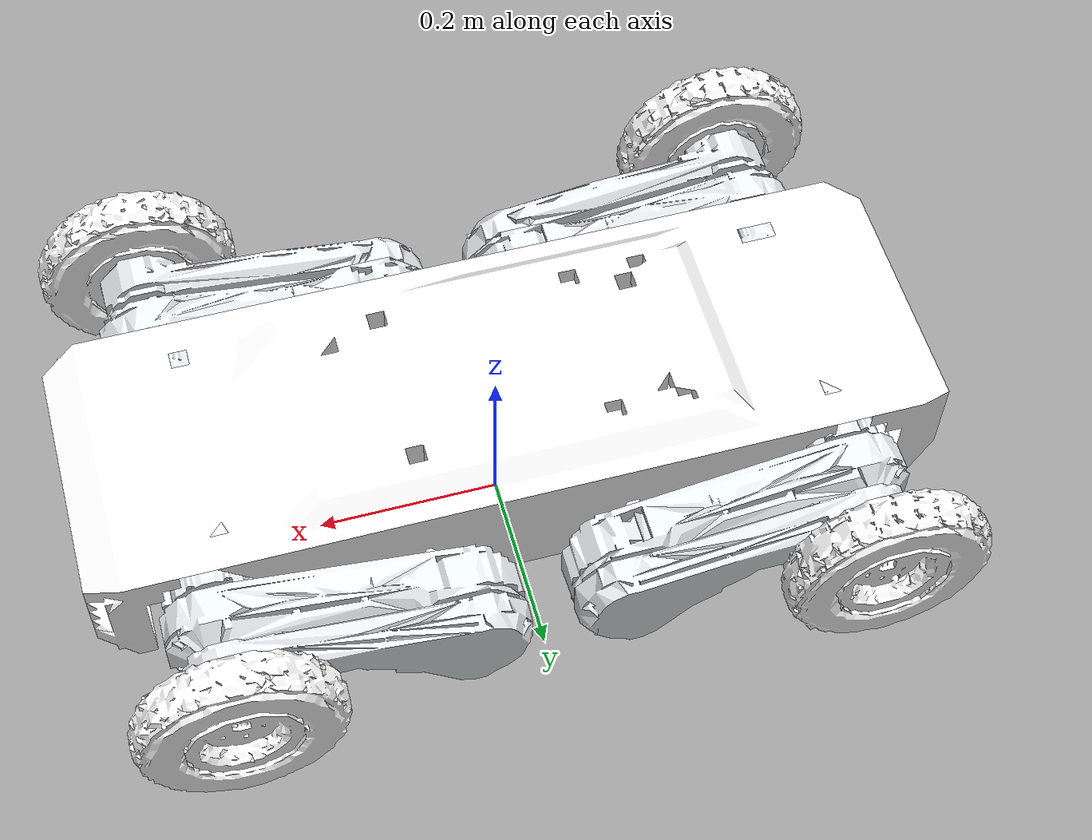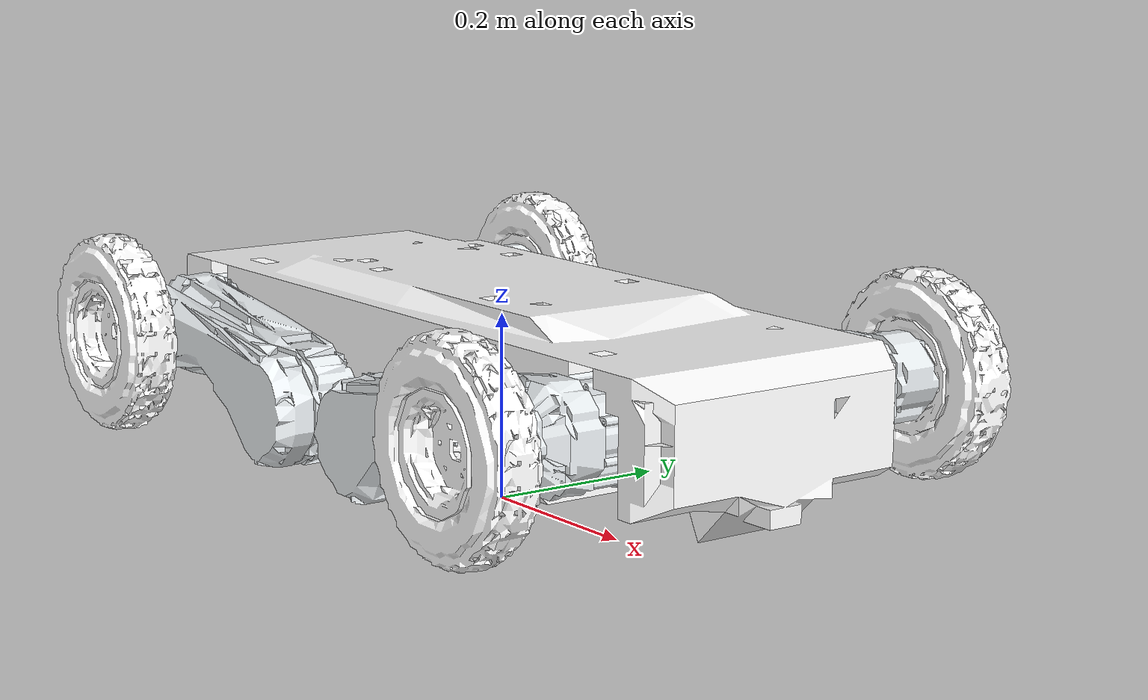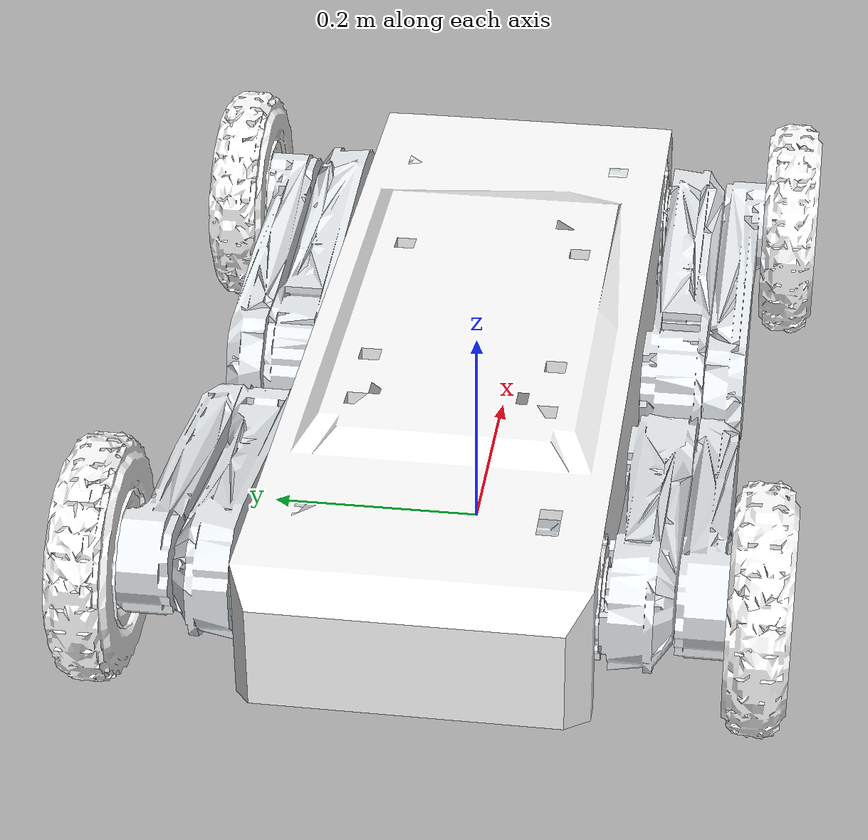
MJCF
<mujoco model="JXG">
  <compiler angle="radian" meshdir="meshes/" autolimits="true"/>
  <statistic meansize="0.216419" extent="1.00893" center="0.0188332 0.00134897 -0.0482028"/>
  <size njmax="500" nconmax="100"/>

  <option cone="elliptic" impratio="100"/>

  <default>
    <default class="JXG">
      <geom friction="0.4" margin="0.001" condim="1"/>
      <joint damping="0.1" armature="0.01" frictionloss="0.2"/>
      <motor/>
      <default class="visual">
        <geom type="mesh" contype="0" conaffinity="0" group="1"/>
      </default>
      <default class="collision">
        <geom group="3"/>
      </default>
    </default>
  </default>

  <asset>
    <mesh name="base_link" file="base_link.obj"/>
    <mesh name="FL_hip" file="FL_hip.obj"/>
    <mesh name="FL_thigh" file="FL_thigh.obj"/>
    <mesh name="FL_calf" file="FL_calf.obj"/>
    <mesh name="FL_foot" file="FL_foot.obj"/>
    <mesh name="FR_hip" file="FR_hip.obj"/>
    <mesh name="FR_thigh" file="FR_thigh.obj"/>
    <mesh name="FR_calf" file="FR_calf.obj"/>
    <mesh name="FR_foot" file="FR_foot.obj"/>
    <mesh name="RL_hip" file="RL_hip.obj"/>
    <mesh name="RL_thigh" file="RL_thigh.obj"/>
    <mesh name="RL_calf" file="RL_calf.obj"/>
    <mesh name="RL_foot" file="RL_foot.obj"/>
    <mesh name="RR_hip" file="RR_hip.obj"/>
    <mesh name="RR_thigh" file="RR_thigh.obj"/>
    <mesh name="RR_calf" file="RR_calf.obj"/>
    <mesh name="RR_foot" file="RR_foot.obj"/>
  </asset>

  <worldbody>
    <light name="spotlight" mode="targetbodycom" target="base_link" pos="0 -0.5 2" cutoff="0.785" directional="false" castshadow="true"/>

    <body name="base_link" pos="0 0 0.2" childclass="JXG">
      <inertial pos="0.0067692 0.0046913 -0.0546898" quat="-0.00094756 0.70675 -0.00189277 0.70746" mass="21.0359" diaginertia="0.729896 0.656605 0.175112"/>
      <joint name="floating_base_joint" type="free"/>
      <geom type="mesh" contype="0" conaffinity="0" group="1" density="0" rgba="1 1 1 1" mesh="base_link"/>
      <geom size="0.265 0.145 0.075" pos="0 0 -0.048" type="box" rgba="1 1 1 1" class="collision"/>
      <site name="imu" pos="0.0 0.0 0.0"/>
      <body name="FL_hip" pos="0.3315 0.075 -0.0432">
        <inertial pos="-0.0034775 0.0431532 3.81e-05" quat="-0.0707528 0.674056 0.215851 0.702888" mass="1.89709" diaginertia="0.00329156 0.00328559 0.00277945"/>
        <joint name="FL_hip_joint" pos="0 0 0" axis="1 0 0" range="-0.85 0.85"/>
        <geom type="mesh" contype="0" conaffinity="0" group="1" density="0" rgba="0.89804 0.91765 0.92941 1" mesh="FL_hip"/>
        <geom size="0.055 0.05" pos="0 0.085 0" quat="0.707105 0.707108 0 0" type="cylinder" rgba="0.89804 0.91765 0.92941 1" class="collision"/>
        <body name="FL_thigh" pos="0 0.1125 0">
          <inertial pos="-0.181442 -0.0025018 -0.0292968" quat="0.553599 0.45904 0.442952 0.535353" mass="1.78267" diaginertia="0.0204209 0.0190441 0.00248422"/>
          <joint name="FL_thigh_joint" pos="0 0 0" axis="0 1 0" range="-2.1 1.56"/>
          <geom type="mesh" contype="0" conaffinity="0" group="1" density="0" rgba="0.89804 0.91765 0.92941 1" mesh="FL_thigh"/>
          <geom size="0.12 0.025 0.045" pos="-0.185 0 0" type="box" rgba="0.89804 0.91765 0.92941 1" class="collision"/>
          <body name="FL_calf" pos="-0.2461 0.044 -0.044">
            <inertial pos="0.121056 0.0039521 0.0291696" quat="0.518928 0.441604 0.458857 0.57022" mass="0.835067" diaginertia="0.0109267 0.0104099 0.000899342"/>
            <joint name="FL_calf_joint" pos="0 0 0" axis="0 1 0" range="0.4 2.4"/>
            <geom type="mesh" contype="0" conaffinity="0" group="1" density="0" rgba="0.89804 0.91765 0.92941 1" mesh="FL_calf"/>
            <geom size="0.16 0.015 0.025" pos="0.12 0 0.04" quat="0.99875 0 -0.0499792 0" type="box" rgba="0.89804 0.91765 0.92941 1" class="collision"/>
            <body name="FL_foot" pos="0.24564 0 0.0465">
              <inertial pos="-1e-05 0.0519824 1.1e-06" quat="0.707107 0 0 0.707107" mass="0.548405" diaginertia="0.0033289 0.0018184 0.0018182"/>
              <joint name="FL_foot_joint" pos="0 0 0" axis="0 1 0" range="-9999999 9999999"/>
              <geom type="mesh" contype="0" conaffinity="0" group="1" density="0" rgba="1 1 1 1" mesh="FL_foot"/>
              <geom size="0.108 0.025" pos="0 0.053 0" quat="0.707388 0.706825 0 0" type="cylinder" rgba="1 1 1 1" class="collision"/>
            </body>
          </body>
        </body>
      </body>
      <body name="FR_hip" pos="0.3315 -0.075 -0.0432">
        <inertial pos="-0.0034189 -0.0431526 -0.0001168" quat="0.599111 0.605067 0.413473 0.322491" mass="1.89717" diaginertia="0.00331689 0.00324998 0.00279203"/>
        <joint name="FR_hip_joint" pos="0 0 0" axis="1 0 0" range="-0.85 0.85"/>
        <geom type="mesh" contype="0" conaffinity="0" group="1" density="0" rgba="0.89804 0.91765 0.92941 1" mesh="FR_hip"/>
        <geom size="0.055 0.05" pos="0 -0.085 0" quat="0.707105 0.707108 0 0" type="cylinder" rgba="0.89804 0.91765 0.92941 1" class="collision"/>
        <body name="FR_thigh" pos="0 -0.1115 0">
          <inertial pos="-0.181252 -0.0025018 -0.0303547" quat="0.536004 0.441858 0.456687 0.555787" mass="1.78266" diaginertia="0.0204308 0.0190469 0.00249107"/>
          <joint name="FR_thigh_joint" pos="0 0 0" axis="0 1 0" range="-2.1 1.56"/>
          <geom type="mesh" contype="0" conaffinity="0" group="1" density="0" rgba="0.89804 0.91765 0.92941 1" mesh="FR_thigh"/>
          <geom size="0.12 0.025 0.045" pos="-0.185 0 0" type="box" rgba="0.89804 0.91765 0.92941 1" class="collision"/>
          <body name="FR_calf" pos="-0.2461 -0.0435 -0.044">
            <inertial pos="0.1211 -0.0039644 0.02918" quat="0.570263 0.45886 0.441596 0.518884" mass="0.83543" diaginertia="0.0109317 0.0104151 0.000899494"/>
            <joint name="FR_calf_joint" pos="0 0 0" axis="0 1 0" range="0.4 2.4"/>
            <geom type="mesh" contype="0" conaffinity="0" group="1" density="0" rgba="0.89804 0.91765 0.92941 1" mesh="FR_calf"/>
            <geom size="0.16 0.015 0.025" pos="0.12 0 0.04" quat="0.99875 0 -0.0499792 0" type="box" rgba="0.89804 0.91765 0.92941 1" class="collision"/>
            <body name="FR_foot" pos="0.24564 0 0.0465">
              <inertial pos="-1.2228e-06 -0.050659 -9.7867e-06" quat="0.5 0.5 0.5 0.5" mass="0.557814" diaginertia="0.0033304 0.0018226 0.0018224"/>
              <joint name="FR_foot_joint" pos="0 0 0" axis="0 1 0" range="-9999999 9999999"/>
              <geom type="mesh" contype="0" conaffinity="0" group="1" density="0" rgba="1 1 1 1" mesh="FR_foot"/>
              <geom size="0.108 0.025" pos="0 -0.053 0" quat="0.707388 0.706825 0 0" type="cylinder" rgba="1 1 1 1" class="collision"/>
            </body>
          </body>
        </body>
      </body>
      <body name="RL_hip" pos="-0.3315 0.075 -0.0432">
        <inertial pos="0.0034189 0.0431526 -0.0001168" quat="0.605067 0.599111 0.322491 0.413473" mass="1.89717" diaginertia="0.00331689 0.00324998 0.00279203"/>
        <joint name="RL_hip_joint" pos="0 0 0" axis="1 0 0" range="-0.85 0.85"/>
        <geom type="mesh" contype="0" conaffinity="0" group="1" density="0" rgba="0.89804 0.91765 0.92941 1" mesh="RL_hip"/>
        <geom size="0.055 0.05" pos="0 0.085 0" quat="0.707105 0.707108 0 0" type="cylinder" rgba="0.89804 0.91765 0.92941 1" class="collision"/>
        <body name="RL_thigh" pos="0 0.1125 0">
          <inertial pos="0.181252 -0.0035018 -0.0303547" quat="0.441858 0.536004 0.555787 0.456687" mass="1.78266" diaginertia="0.0204308 0.0190469 0.00249107"/>
          <joint name="RL_thigh_joint" pos="0 0 0" axis="0 1 0" range="-1.56 2.1"/>
          <geom type="mesh" contype="0" conaffinity="0" group="1" density="0" rgba="0.89804 0.91765 0.92941 1" mesh="RL_thigh"/>
          <geom size="0.12 0.025 0.045" pos="0.185 0 0" type="box" rgba="0.89804 0.91765 0.92941 1" class="collision"/>
          <body name="RL_calf" pos="0.2461 0.044 -0.044">
            <inertial pos="-0.1211 0.0024644 0.02918" quat="0.45886 0.570263 0.518884 0.441596" mass="0.83543" diaginertia="0.0109317 0.0104151 0.000899494"/>
            <joint name="RL_calf_joint" pos="0 0 0" axis="0 1 0" range="-2.4 -0.4"/>
            <geom type="mesh" contype="0" conaffinity="0" group="1" density="0" rgba="0.89804 0.91765 0.92941 1" mesh="RL_calf"/>
            <geom size="0.16 0.015 0.025" pos="-0.12 0 0.04" quat="0.99875 0 0.0499792 0" type="box" rgba="0.89804 0.91765 0.92941 1" class="collision"/>
            <body name="RL_foot" pos="-0.24564 0 0.0465">
              <inertial pos="3.8e-06 0.0491594 9.1e-06" quat="0.5 0.5 0.5 0.5" mass="0.557814" diaginertia="0.0033304 0.0018225 0.0018224"/>
              <joint name="RL_foot_joint" pos="0 0 0" axis="0 1 0" range="-9999999 9999999"/>
              <geom type="mesh" contype="0" conaffinity="0" group="1" density="0" rgba="1 1 1 1" mesh="RL_foot"/>
              <geom size="0.108 0.025" pos="0 0.053 0" quat="0.707388 0.706825 0 0" type="cylinder" rgba="1 1 1 1" class="collision"/>
            </body>
          </body>
        </body>
      </body>
      <body name="RR_hip" pos="-0.3315 -0.075 -0.0432">
        <inertial pos="0.0034775 -0.0431532 3.81e-05" quat="-0.215851 0.702888 0.0707528 0.674056" mass="1.89709" diaginertia="0.00329156 0.00328559 0.00277945"/>
        <joint name="RR_hip_joint" pos="0 0 0" axis="1 0 0" range="-0.85 0.85"/>
        <geom type="mesh" contype="0" conaffinity="0" group="1" density="0" rgba="0.89804 0.91765 0.92941 1" mesh="RR_hip"/>
        <geom size="0.055 0.05" pos="0 -0.085 0" quat="0.707105 0.707108 0 0" type="cylinder" rgba="0.89804 0.91765 0.92941 1" class="collision"/>
        <body name="RR_thigh" pos="0 -0.1115 0">
          <inertial pos="0.181442 0.0015018 -0.0292968" quat="0.45904 0.553599 0.535353 0.442952" mass="1.78267" diaginertia="0.0204209 0.0190441 0.00248422"/>
          <joint name="RR_thigh_joint" pos="0 0 0" axis="0 1 0" range="-1.56 2.1"/>
          <geom type="mesh" contype="0" conaffinity="0" group="1" density="0" rgba="0.89804 0.91765 0.92941 1" mesh="RR_thigh"/>
          <geom size="0.12 0.025 0.045" pos="0.185 0 0" type="box" rgba="0.89804 0.91765 0.92941 1" class="collision"/>
          <body name="RR_calf" pos="0.2461 -0.0435 -0.044">
            <inertial pos="-0.12111 -0.0054627 0.029178" quat="0.441632 0.518854 0.570278 0.45884" mass="0.83543" diaginertia="0.0109327 0.0104158 0.000899483"/>
            <joint name="RR_calf_joint" pos="0 0 0" axis="0 1 0" range="-2.4 -0.4"/>
            <geom type="mesh" contype="0" conaffinity="0" group="1" density="0" rgba="0.89804 0.91765 0.92941 1" mesh="RR_calf"/>
            <geom size="0.16 0.015 0.025" pos="-0.12 0 0.04" quat="0.99875 0 0.0499792 0" type="box" rgba="0.89804 0.91765 0.92941 1" class="collision"/>
            <body name="RR_foot" pos="-0.24564 0 0.0465">
              <inertial pos="-6.4e-06 -0.0531424 -7.5e-06" quat="0.707107 0 0 0.707107" mass="0.55783" diaginertia="0.0033304 0.0018228 0.0018228"/>
              <joint name="RR_foot_joint" pos="0 0 0" axis="0 1 0" range="-9999999 9999999"/>
              <geom type="mesh" contype="0" conaffinity="0" group="1" density="0" rgba="1 1 1 1" mesh="RR_foot"/>
              <geom size="0.108 0.025" pos="0 -0.053 0" quat="0.707388 0.706825 0 0" type="cylinder" rgba="1 1 1 1" class="collision"/>
            </body>
          </body>
        </body>
      </body>
    </body>
  </worldbody>

  <actuator>
    <!-- FL leg -->
    <motor name="FL_hip" joint="FL_hip_joint" ctrlrange="-60 60"/>
    <motor name="FL_thigh" joint="FL_thigh_joint" ctrlrange="-60 60"/>
    <motor name="FL_calf" joint="FL_calf_joint" ctrlrange="-120 120"/>
    <motor name="FL_foot" joint="FL_foot_joint" ctrlrange="-17 17"/>
    <!-- FR leg -->
    <motor name="FR_hip" joint="FR_hip_joint" ctrlrange="-60 60"/>
    <motor name="FR_thigh" joint="FR_thigh_joint" ctrlrange="-60 60"/>
    <motor name="FR_calf" joint="FR_calf_joint" ctrlrange="-120 120"/>
    <motor name="FR_foot" joint="FR_foot_joint" ctrlrange="-17 17"/>
    <!-- RL leg -->
    <motor name="RL_hip" joint="RL_hip_joint" ctrlrange="-60 60"/>
    <motor name="RL_thigh" joint="RL_thigh_joint" ctrlrange="-60 60"/>
    <motor name="RL_calf" joint="RL_calf_joint" ctrlrange="-120 120"/>
    <motor name="RL_foot" joint="RL_foot_joint" ctrlrange="-17 17"/>
    <!-- RR leg -->
    <motor name="RR_hip" joint="RR_hip_joint" ctrlrange="-60 60"/>
    <motor name="RR_thigh" joint="RR_thigh_joint" ctrlrange="-60 60"/>
    <motor name="RR_calf" joint="RR_calf_joint" ctrlrange="-120 120"/>
    <motor name="RR_foot" joint="RR_foot_joint" ctrlrange="-17 17"/>
  </actuator>

  <sensor>
    <!-- Joint position sensors -->
    <jointpos name="FL_hip_pos" joint="FL_hip_joint"/>
    <jointpos name="FL_thigh_pos" joint="FL_thigh_joint"/>
    <jointpos name="FL_calf_pos" joint="FL_calf_joint"/>
    <jointpos name="FL_foot_pos" joint="FL_foot_joint"/>

    <jointpos name="FR_hip_pos" joint="FR_hip_joint"/>
    <jointpos name="FR_thigh_pos" joint="FR_thigh_joint"/>
    <jointpos name="FR_calf_pos" joint="FR_calf_joint"/>
    <jointpos name="FR_foot_pos" joint="FR_foot_joint"/>

    <jointpos name="RL_hip_pos" joint="RL_hip_joint"/>
    <jointpos name="RL_thigh_pos" joint="RL_thigh_joint"/>
    <jointpos name="RL_calf_pos" joint="RL_calf_joint"/>
    <jointpos name="RL_foot_pos" joint="RL_foot_joint"/>

    <jointpos name="RR_hip_pos" joint="RR_hip_joint"/>
    <jointpos name="RR_thigh_pos" joint="RR_thigh_joint"/>
    <jointpos name="RR_calf_pos" joint="RR_calf_joint"/>
    <jointpos name="RR_foot_pos" joint="RR_foot_joint"/>

    <!-- Joint velocity sensors -->
    <jointvel name="FL_hip_vel" joint="FL_hip_joint"/>
    <jointvel name="FL_thigh_vel" joint="FL_thigh_joint"/>
    <jointvel name="FL_calf_vel" joint="FL_calf_joint"/>
    <jointvel name="FL_foot_vel" joint="FL_foot_joint"/>

    <jointvel name="FR_hip_vel" joint="FR_hip_joint"/>
    <jointvel name="FR_thigh_vel" joint="FR_thigh_joint"/>
    <jointvel name="FR_calf_vel" joint="FR_calf_joint"/>
    <jointvel name="FR_foot_vel" joint="FR_foot_joint"/>

    <jointvel name="RL_hip_vel" joint="RL_hip_joint"/>
    <jointvel name="RL_thigh_vel" joint="RL_thigh_joint"/>
    <jointvel name="RL_calf_vel" joint="RL_calf_joint"/>
    <jointvel name="RL_foot_vel" joint="RL_foot_joint"/>

    <jointvel name="RR_hip_vel" joint="RR_hip_joint"/>
    <jointvel name="RR_thigh_vel" joint="RR_thigh_joint"/>
    <jointvel name="RR_calf_vel" joint="RR_calf_joint"/>
    <jointvel name="RR_foot_vel" joint="RR_foot_joint"/>

    <!-- Joint torque sensors -->
    <jointactuatorfrc name="FL_hip_torque" joint="FL_hip_joint" noise="0.01"/>
    <jointactuatorfrc name="FL_thigh_torque" joint="FL_thigh_joint" noise="0.01"/>
    <jointactuatorfrc name="FL_calf_torque" joint="FL_calf_joint" noise="0.01"/>
    <jointactuatorfrc name="FL_foot_torque" joint="FL_foot_joint" noise="0.01"/>

    <jointactuatorfrc name="FR_hip_torque" joint="FR_hip_joint" noise="0.01"/>
    <jointactuatorfrc name="FR_thigh_torque" joint="FR_thigh_joint" noise="0.01"/>
    <jointactuatorfrc name="FR_calf_torque" joint="FR_calf_joint" noise="0.01"/>
    <jointactuatorfrc name="FR_foot_torque" joint="FR_foot_joint" noise="0.01"/>

    <jointactuatorfrc name="RL_hip_torque" joint="RL_hip_joint" noise="0.01"/>
    <jointactuatorfrc name="RL_thigh_torque" joint="RL_thigh_joint" noise="0.01"/>
    <jointactuatorfrc name="RL_calf_torque" joint="RL_calf_joint" noise="0.01"/>
    <jointactuatorfrc name="RL_foot_torque" joint="RL_foot_joint" noise="0.01"/>

    <jointactuatorfrc name="RR_hip_torque" joint="RR_hip_joint" noise="0.01"/>
    <jointactuatorfrc name="RR_thigh_torque" joint="RR_thigh_joint" noise="0.01"/>
    <jointactuatorfrc name="RR_calf_torque" joint="RR_calf_joint" noise="0.01"/>
    <jointactuatorfrc name="RR_foot_torque" joint="RR_foot_joint" noise="0.01"/>

    <!-- IMU sensors -->
    <framequat name="imu_quat" objtype="site" objname="imu"/>
    <gyro name="imu_gyro" site="imu"/>
    <accelerometer name="imu_acc" site="imu"/>

    <!-- Frame sensors -->
    <framepos name="frame_pos" objtype="site" objname="imu"/>
    <framelinvel name="frame_vel" objtype="site" objname="imu"/>
  </sensor>

  <keyframe>
    <key name="home" qpos="0 0 0.35 1 0 0 0 0 0 0 0 0 0 0 0 0 0 0 0 0 0 0 0"
        ctrl="0 0 0 0 0 0 0 0 0 0 0 0 0 0 0 0"/>
  </keyframe>
</mujoco>
